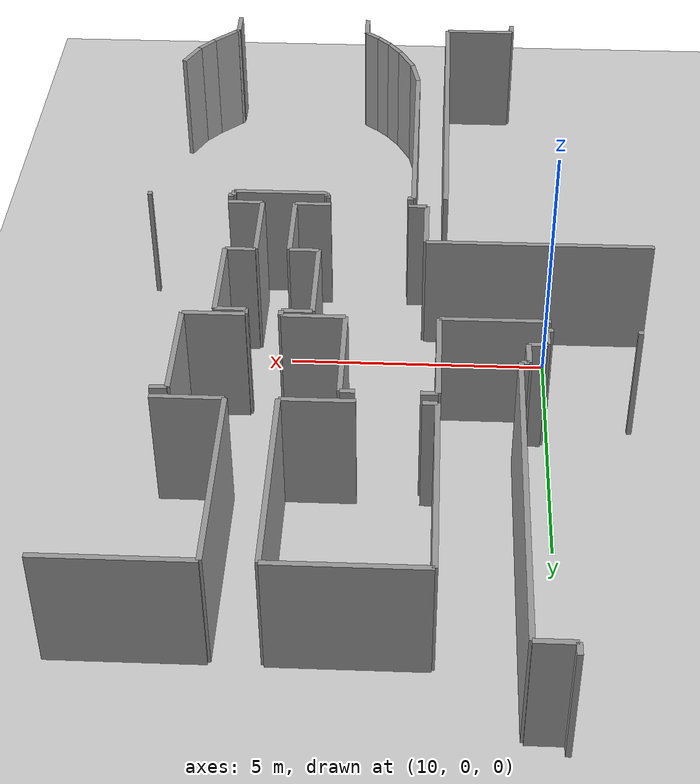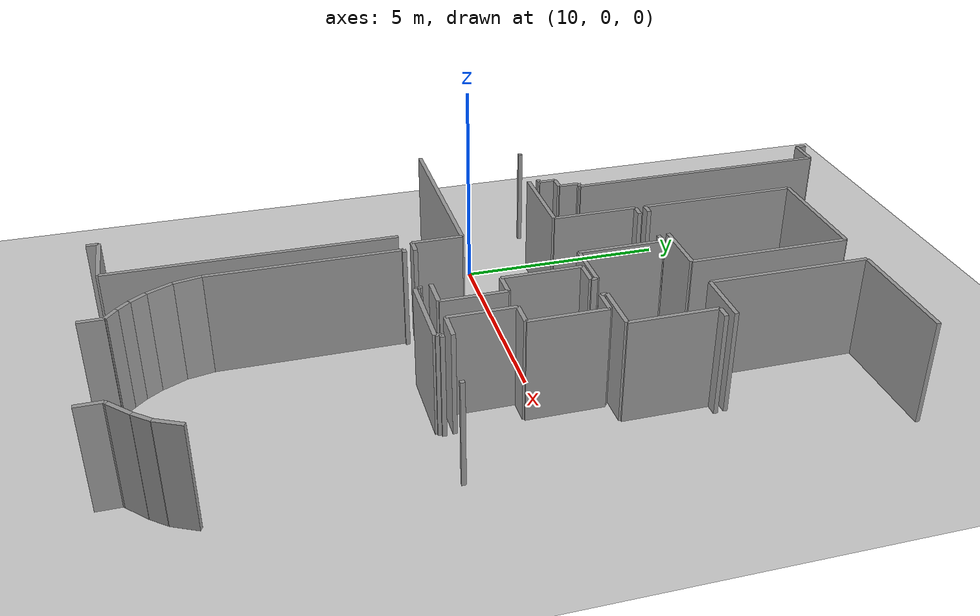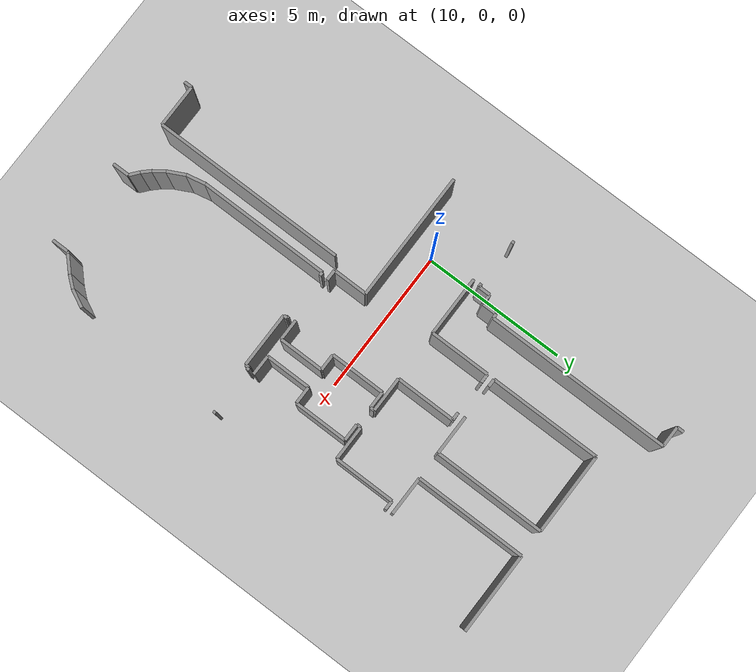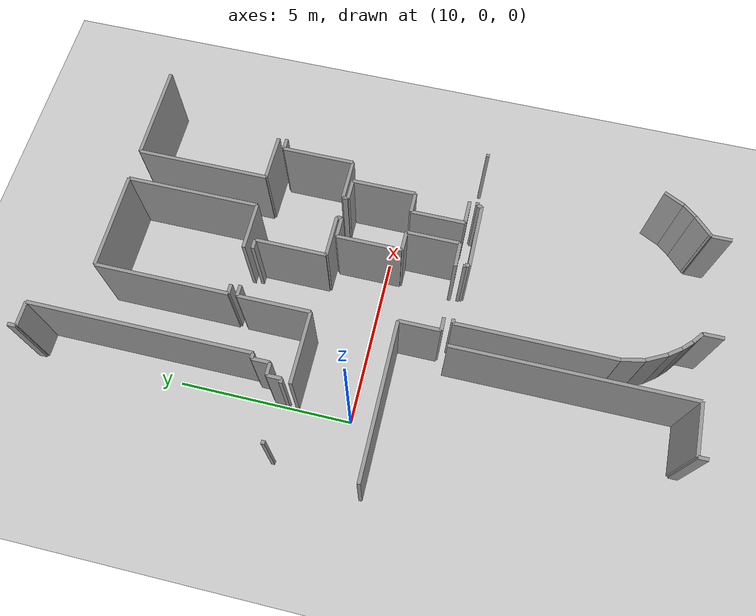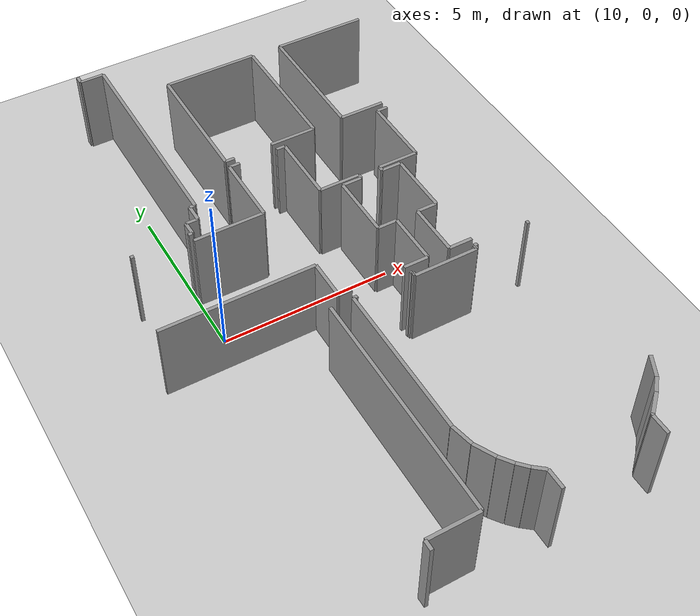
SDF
<sdf version="1.6">
 <world name="default">
  <model name="ground_plane">
   <static>1</static>
   <link name="link">
    <collision name="collision">
     <geometry><plane><normal>0 0 1</normal><size>100 100</size></plane></geometry>
     <surface><friction><ode><mu>100</mu><mu2>50</mu2></ode></friction></surface>
    </collision>
    <visual name="visual">
     <cast_shadows>0</cast_shadows>
     <geometry><plane><normal>0 0 1</normal><size>100 100</size></plane></geometry>
     <material>
      <script><uri>file://media/materials/scripts/gazebo.material</uri><name>Gazebo/Grey</name></script>
     </material>
    </visual>
   </link>
  </model>
  <model name="0510034841_A-40">
   <static>1</static>
   <link name="Wall_162">
    <collision name="Wall_162_Collision">
     <geometry><box><size>0.242586574591 0.1 2.5</size></box></geometry>
     <pose>0.121293287296 0 1.25 0 0 0</pose>
    </collision>
    <visual name="Wall_162_Visual">
     <pose>0.121293287296 0 1.25 0 0 0</pose>
     <geometry><box><size>0.242586574591 0.1 2.5</size></box></geometry>
     <material>
      <script><uri>file://media/materials/scripts/gazebo.material</uri><name>Gazebo/Grey</name></script>
      <ambient>1 1 1 1</ambient>
     </material>
    </visual>
    <pose>43.7260079212 -0.00609322636336 0 0 0 -1.57079632679</pose>
   </link>
   <link name="Wall_163">
    <collision name="Wall_163_Collision">
     <geometry><box><size>0.706687315934 0.1 2.5</size></box></geometry>
     <pose>0.353343657967 0 1.25 0 0 0</pose>
    </collision>
    <visual name="Wall_163_Visual">
     <pose>0.353343657967 0 1.25 0 0 0</pose>
     <geometry><box><size>0.706687315934 0.1 2.5</size></box></geometry>
     <material>
      <script><uri>file://media/materials/scripts/gazebo.material</uri><name>Gazebo/Grey</name></script>
      <ambient>1 1 1 1</ambient>
     </material>
    </visual>
    <pose>43.7260079212 -0.248679800955 0 0 0 0.0</pose>
   </link>
   <link name="Wall_164">
    <collision name="Wall_164_Collision">
     <geometry><box><size>6.36323245659 0.1 2.5</size></box></geometry>
     <pose>3.18161622829 0 1.25 0 0 0</pose>
    </collision>
    <visual name="Wall_164_Visual">
     <pose>3.18161622829 0 1.25 0 0 0</pose>
     <geometry><box><size>6.36323245659 0.1 2.5</size></box></geometry>
     <material>
      <script><uri>file://media/materials/scripts/gazebo.material</uri><name>Gazebo/Grey</name></script>
      <ambient>1 1 1 1</ambient>
     </material>
    </visual>
    <pose>44.4326952371 -0.248679800955 0 0 0 -1.57079632679</pose>
   </link>
   <link name="Wall_165">
    <collision name="Wall_165_Collision">
     <geometry><box><size>0.151695948004 0.1 2.5</size></box></geometry>
     <pose>0.0758479740022 0 1.25 0 0 0</pose>
    </collision>
    <visual name="Wall_165_Visual">
     <pose>0.0758479740022 0 1.25 0 0 0</pose>
     <geometry><box><size>0.151695948004 0.1 2.5</size></box></geometry>
     <material>
      <script><uri>file://media/materials/scripts/gazebo.material</uri><name>Gazebo/Grey</name></script>
      <ambient>1 1 1 1</ambient>
     </material>
    </visual>
    <pose>44.4326952371 -6.61191225754 0 0 0 3.14159265359</pose>
   </link>
   <link name="Wall_166">
    <collision name="Wall_166_Collision">
     <geometry><box><size>0.507514979181 0.1 2.5</size></box></geometry>
     <pose>0.253757489591 0 1.25 0 0 0</pose>
    </collision>
    <visual name="Wall_166_Visual">
     <pose>0.253757489591 0 1.25 0 0 0</pose>
     <geometry><box><size>0.507514979181 0.1 2.5</size></box></geometry>
     <material>
      <script><uri>file://media/materials/scripts/gazebo.material</uri><name>Gazebo/Grey</name></script>
      <ambient>1 1 1 1</ambient>
     </material>
    </visual>
    <pose>44.2809992891 -6.61191225754 0 0 0 -1.57079632679</pose>
   </link>
   <link name="Wall_167">
    <collision name="Wall_167_Collision">
     <geometry><box><size>0.347313902711 0.1 2.5</size></box></geometry>
     <pose>0.173656951356 0 1.25 0 0 0</pose>
    </collision>
    <visual name="Wall_167_Visual">
     <pose>0.173656951356 0 1.25 0 0 0</pose>
     <geometry><box><size>0.347313902711 0.1 2.5</size></box></geometry>
     <material>
      <script><uri>file://media/materials/scripts/gazebo.material</uri><name>Gazebo/Grey</name></script>
      <ambient>1 1 1 1</ambient>
     </material>
    </visual>
    <pose>44.2809992891 -7.11942723672 0 0 0 3.14159265359</pose>
   </link>
   <link name="Wall_168">
    <collision name="Wall_168_Collision">
     <geometry><box><size>0.405707322027 0.1 2.5</size></box></geometry>
     <pose>0.202853661014 0 1.25 0 0 0</pose>
    </collision>
    <visual name="Wall_168_Visual">
     <pose>0.202853661014 0 1.25 0 0 0</pose>
     <geometry><box><size>0.405707322027 0.1 2.5</size></box></geometry>
     <material>
      <script><uri>file://media/materials/scripts/gazebo.material</uri><name>Gazebo/Grey</name></script>
      <ambient>1 1 1 1</ambient>
     </material>
    </visual>
    <pose>43.9336853864 -7.11942723672 0 0 0 -1.57079632679</pose>
   </link>
   <link name="Wall_169">
    <collision name="Wall_169_Collision">
     <geometry><box><size>0.120975931756 0.1 2.5</size></box></geometry>
     <pose>0.0604879658779 0 1.25 0 0 0</pose>
    </collision>
    <visual name="Wall_169_Visual">
     <pose>0.0604879658779 0 1.25 0 0 0</pose>
     <geometry><box><size>0.120975931756 0.1 2.5</size></box></geometry>
     <material>
      <script><uri>file://media/materials/scripts/gazebo.material</uri><name>Gazebo/Grey</name></script>
      <ambient>1 1 1 1</ambient>
     </material>
    </visual>
    <pose>43.9336853864 -7.52513455875 0 0 0 3.14159265359</pose>
   </link>
   <link name="Wall_170">
    <collision name="Wall_170_Collision">
     <geometry><box><size>0.0982532751092 0.1 2.5</size></box></geometry>
     <pose>0.0491266375546 0 1.25 0 0 0</pose>
    </collision>
    <visual name="Wall_170_Visual">
     <pose>0.0491266375546 0 1.25 0 0 0</pose>
     <geometry><box><size>0.0982532751092 0.1 2.5</size></box></geometry>
     <material>
      <script><uri>file://media/materials/scripts/gazebo.material</uri><name>Gazebo/Grey</name></script>
      <ambient>1 1 1 1</ambient>
     </material>
    </visual>
    <pose>42.2708693003 -7.52513455875 0 0 0 3.14159265359</pose>
   </link>
   <link name="Wall_189">
    <collision name="Wall_189_Collision">
     <geometry><box><size>6.67055956129 0.1 2.5</size></box></geometry>
     <pose>3.33527978064 0 1.25 0 0 0</pose>
    </collision>
    <visual name="Wall_189_Visual">
     <pose>3.33527978064 0 1.25 0 0 0</pose>
     <geometry><box><size>6.67055956129 0.1 2.5</size></box></geometry>
     <material>
      <script><uri>file://media/materials/scripts/gazebo.material</uri><name>Gazebo/Grey</name></script>
      <ambient>1 1 1 1</ambient>
     </material>
    </visual>
    <pose>45.8093835686 -11.5443789987 0 0 0 -1.57079632679</pose>
   </link>
   <link name="Wall_190">
    <collision name="Wall_190_Collision">
     <geometry><box><size>1.46478622931 0.1 2.5</size></box></geometry>
     <pose>0.732393114654 0 1.25 0 0 0</pose>
    </collision>
    <visual name="Wall_190_Visual">
     <pose>0.732393114654 0 1.25 0 0 0</pose>
     <geometry><box><size>1.46478622931 0.1 2.5</size></box></geometry>
     <material>
      <script><uri>file://media/materials/scripts/gazebo.material</uri><name>Gazebo/Grey</name></script>
      <ambient>1 1 1 1</ambient>
     </material>
    </visual>
    <pose>45.8093835686 -18.21493856 0 0 0 3.14159265359</pose>
   </link>
   <link name="Wall_191">
    <collision name="Wall_191_Collision">
     <geometry><box><size>0.27825733726 0.1 2.5</size></box></geometry>
     <pose>0.13912866863 0 1.25 0 0 0</pose>
    </collision>
    <visual name="Wall_191_Visual">
     <pose>0.13912866863 0 1.25 0 0 0</pose>
     <geometry><box><size>0.27825733726 0.1 2.5</size></box></geometry>
     <material>
      <script><uri>file://media/materials/scripts/gazebo.material</uri><name>Gazebo/Grey</name></script>
      <ambient>1 1 1 1</ambient>
     </material>
    </visual>
    <pose>44.3445973393 -18.21493856 0 0 0 -1.57079632679</pose>
   </link>
   <link name="Wall_194">
    <collision name="Wall_194_Collision">
     <geometry><box><size>2.78054229715 0.1 2.5</size></box></geometry>
     <pose>1.39027114857 0 1.25 0 0 0</pose>
    </collision>
    <visual name="Wall_194_Visual">
     <pose>1.39027114857 0 1.25 0 0 0</pose>
     <geometry><box><size>2.78054229715 0.1 2.5</size></box></geometry>
     <material>
      <script><uri>file://media/materials/scripts/gazebo.material</uri><name>Gazebo/Grey</name></script>
      <ambient>1 1 1 1</ambient>
     </material>
    </visual>
    <pose>45.906621306 -1.64720219356 0 0 0 0.0</pose>
   </link>
   <link name="Wall_195">
    <collision name="Wall_195_Collision">
     <geometry><box><size>3.82451508074 0.1 2.5</size></box></geometry>
     <pose>1.91225754037 0 1.25 0 0 0</pose>
    </collision>
    <visual name="Wall_195_Visual">
     <pose>1.91225754037 0 1.25 0 0 0</pose>
     <geometry><box><size>3.82451508074 0.1 2.5</size></box></geometry>
     <material>
      <script><uri>file://media/materials/scripts/gazebo.material</uri><name>Gazebo/Grey</name></script>
      <ambient>1 1 1 1</ambient>
     </material>
    </visual>
    <pose>48.6871636031 -1.64720219356 0 0 0 -1.57079632679</pose>
   </link>
   <link name="Wall_196">
    <collision name="Wall_196_Collision">
     <geometry><box><size>1.35688534579 0.1 2.5</size></box></geometry>
     <pose>0.678442672895 0 1.25 0 0 0</pose>
    </collision>
    <visual name="Wall_196_Visual">
     <pose>0.678442672895 0 1.25 0 0 0</pose>
     <geometry><box><size>1.35688534579 0.1 2.5</size></box></geometry>
     <material>
      <script><uri>file://media/materials/scripts/gazebo.material</uri><name>Gazebo/Grey</name></script>
      <ambient>1 1 1 1</ambient>
     </material>
    </visual>
    <pose>48.6871636031 -5.4717172743 0 0 0 3.14159265359</pose>
   </link>
   <link name="Wall_197">
    <collision name="Wall_197_Collision">
     <geometry><box><size>0.273052706408 0.1 2.5</size></box></geometry>
     <pose>0.136526353204 0 1.25 0 0 0</pose>
    </collision>
    <visual name="Wall_197_Visual">
     <pose>0.136526353204 0 1.25 0 0 0</pose>
     <geometry><box><size>0.273052706408 0.1 2.5</size></box></geometry>
     <material>
      <script><uri>file://media/materials/scripts/gazebo.material</uri><name>Gazebo/Grey</name></script>
      <ambient>1 1 1 1</ambient>
     </material>
    </visual>
    <pose>46.1796740124 -5.4717172743 0 0 0 3.14159265359</pose>
   </link>
   <link name="Wall_198">
    <collision name="Wall_198_Collision">
     <geometry><box><size>3.82451508074 0.1 2.5</size></box></geometry>
     <pose>1.91225754037 0 1.25 0 0 0</pose>
    </collision>
    <visual name="Wall_198_Visual">
     <pose>1.91225754037 0 1.25 0 0 0</pose>
     <geometry><box><size>3.82451508074 0.1 2.5</size></box></geometry>
     <material>
      <script><uri>file://media/materials/scripts/gazebo.material</uri><name>Gazebo/Grey</name></script>
      <ambient>1 1 1 1</ambient>
     </material>
    </visual>
    <pose>45.906621306 -5.4717172743 0 0 0 1.57079632679</pose>
   </link>
   <link name="Wall_200">
    <collision name="Wall_200_Collision">
     <geometry><box><size>2.05252868894 0.1 2.5</size></box></geometry>
     <pose>1.02626434447 0 1.25 0 0 0</pose>
    </collision>
    <visual name="Wall_200_Visual">
     <pose>1.02626434447 0 1.25 0 0 0</pose>
     <geometry><box><size>2.05252868894 0.1 2.5</size></box></geometry>
     <material>
      <script><uri>file://media/materials/scripts/gazebo.material</uri><name>Gazebo/Grey</name></script>
      <ambient>1 1 1 1</ambient>
     </material>
    </visual>
    <pose>43.8479993907 -7.78206560374 0 0 0 0.0</pose>
   </link>
   <link name="Wall_201">
    <collision name="Wall_201_Collision">
     <geometry><box><size>2.05798720422 0.1 2.5</size></box></geometry>
     <pose>1.02899360211 0 1.25 0 0 0</pose>
    </collision>
    <visual name="Wall_201_Visual">
     <pose>1.02899360211 0 1.25 0 0 0</pose>
     <geometry><box><size>2.05798720422 0.1 2.5</size></box></geometry>
     <material>
      <script><uri>file://media/materials/scripts/gazebo.material</uri><name>Gazebo/Grey</name></script>
      <ambient>1 1 1 1</ambient>
     </material>
    </visual>
    <pose>45.9005280796 -7.78206560374 0 0 0 1.57079632679</pose>
   </link>
   <link name="Wall_202">
    <collision name="Wall_202_Collision">
     <geometry><box><size>0.312912562202 0.1 2.5</size></box></geometry>
     <pose>0.156456281101 0 1.25 0 0 0</pose>
    </collision>
    <visual name="Wall_202_Visual">
     <pose>0.156456281101 0 1.25 0 0 0</pose>
     <geometry><box><size>0.312912562202 0.1 2.5</size></box></geometry>
     <material>
      <script><uri>file://media/materials/scripts/gazebo.material</uri><name>Gazebo/Grey</name></script>
      <ambient>1 1 1 1</ambient>
     </material>
    </visual>
    <pose>45.9005280796 -5.72407839951 0 0 0 0.0</pose>
   </link>
   <link name="Wall_203">
    <collision name="Wall_203_Collision">
     <geometry><box><size>0.268990555499 0.1 2.5</size></box></geometry>
     <pose>0.13449527775 0 1.25 0 0 0</pose>
    </collision>
    <visual name="Wall_203_Visual">
     <pose>0.13449527775 0 1.25 0 0 0</pose>
     <geometry><box><size>0.268990555499 0.1 2.5</size></box></geometry>
     <material>
      <script><uri>file://media/materials/scripts/gazebo.material</uri><name>Gazebo/Grey</name></script>
      <ambient>1 1 1 1</ambient>
     </material>
    </visual>
    <pose>47.3603635625 -5.72407839951 0 0 0 0.0</pose>
   </link>
   <link name="Wall_204">
    <collision name="Wall_204_Collision">
     <geometry><box><size>2.03894587184 0.1 2.5</size></box></geometry>
     <pose>1.01947293592 0 1.25 0 0 0</pose>
    </collision>
    <visual name="Wall_204_Visual">
     <pose>1.01947293592 0 1.25 0 0 0</pose>
     <geometry><box><size>2.03894587184 0.1 2.5</size></box></geometry>
     <material>
      <script><uri>file://media/materials/scripts/gazebo.material</uri><name>Gazebo/Grey</name></script>
      <ambient>1 1 1 1</ambient>
     </material>
    </visual>
    <pose>47.629354118 -5.72407839951 0 0 0 -1.57079632679</pose>
   </link>
   <link name="Wall_205">
    <collision name="Wall_205_Collision">
     <geometry><box><size>1.20036559358 0.1 2.5</size></box></geometry>
     <pose>0.600182796791 0 1.25 0 0 0</pose>
    </collision>
    <visual name="Wall_205_Visual">
     <pose>0.600182796791 0 1.25 0 0 0</pose>
     <geometry><box><size>1.20036559358 0.1 2.5</size></box></geometry>
     <material>
      <script><uri>file://media/materials/scripts/gazebo.material</uri><name>Gazebo/Grey</name></script>
      <ambient>1 1 1 1</ambient>
     </material>
    </visual>
    <pose>47.629354118 -7.76302427135 0 0 0 0.0</pose>
   </link>
   <link name="Wall_206">
    <collision name="Wall_206_Collision">
     <geometry><box><size>0.138367015335 0.1 2.5</size></box></geometry>
     <pose>0.0691835076673 0 1.25 0 0 0</pose>
    </collision>
    <visual name="Wall_206_Visual">
     <pose>0.0691835076673 0 1.25 0 0 0</pose>
     <geometry><box><size>0.138367015335 0.1 2.5</size></box></geometry>
     <material>
      <script><uri>file://media/materials/scripts/gazebo.material</uri><name>Gazebo/Grey</name></script>
      <ambient>1 1 1 1</ambient>
     </material>
    </visual>
    <pose>48.8297197116 -7.76302427135 0 0 0 -1.57079632679</pose>
   </link>
   <link name="Wall_207">
    <collision name="Wall_207_Collision">
     <geometry><box><size>0.577333197928 0.1 2.5</size></box></geometry>
     <pose>0.288666598964 0 1.25 0 0 0</pose>
    </collision>
    <visual name="Wall_207_Visual">
     <pose>0.288666598964 0 1.25 0 0 0</pose>
     <geometry><box><size>0.577333197928 0.1 2.5</size></box></geometry>
     <material>
      <script><uri>file://media/materials/scripts/gazebo.material</uri><name>Gazebo/Grey</name></script>
      <ambient>1 1 1 1</ambient>
     </material>
    </visual>
    <pose>48.8297197116 -7.90139128669 0 0 0 3.14159265359</pose>
   </link>
   <link name="Wall_208">
    <collision name="Wall_208_Collision">
     <geometry><box><size>1.86528892048 0.1 2.5</size></box></geometry>
     <pose>0.932644460242 0 1.25 0 0 0</pose>
    </collision>
    <visual name="Wall_208_Visual">
     <pose>0.932644460242 0 1.25 0 0 0</pose>
     <geometry><box><size>1.86528892048 0.1 2.5</size></box></geometry>
     <material>
      <script><uri>file://media/materials/scripts/gazebo.material</uri><name>Gazebo/Grey</name></script>
      <ambient>1 1 1 1</ambient>
     </material>
    </visual>
    <pose>48.2523865137 -7.90139128669 0 0 0 -1.57079632679</pose>
   </link>
   <link name="Wall_209">
    <collision name="Wall_209_Collision">
     <geometry><box><size>0.571747740429 0.1 2.5</size></box></geometry>
     <pose>0.285873870214 0 1.25 0 0 0</pose>
    </collision>
    <visual name="Wall_209_Visual">
     <pose>0.285873870214 0 1.25 0 0 0</pose>
     <geometry><box><size>0.571747740429 0.1 2.5</size></box></geometry>
     <material>
      <script><uri>file://media/materials/scripts/gazebo.material</uri><name>Gazebo/Grey</name></script>
      <ambient>1 1 1 1</ambient>
     </material>
    </visual>
    <pose>48.2523865137 -9.76668020717 0 0 0 0.0</pose>
   </link>
   <link name="Wall_210">
    <collision name="Wall_210_Collision">
     <geometry><box><size>1.52863816391 0.1 2.5</size></box></geometry>
     <pose>0.764319081954 0 1.25 0 0 0</pose>
    </collision>
    <visual name="Wall_210_Visual">
     <pose>0.764319081954 0 1.25 0 0 0</pose>
     <geometry><box><size>1.52863816391 0.1 2.5</size></box></geometry>
     <material>
      <script><uri>file://media/materials/scripts/gazebo.material</uri><name>Gazebo/Grey</name></script>
      <ambient>1 1 1 1</ambient>
     </material>
    </visual>
    <pose>48.8241342541 -9.76668020717 0 0 0 -1.57079632679</pose>
   </link>
   <link name="Wall_211">
    <collision name="Wall_211_Collision">
     <geometry><box><size>0.716842693206 0.1 2.5</size></box></geometry>
     <pose>0.358421346603 0 1.25 0 0 0</pose>
    </collision>
    <visual name="Wall_211_Visual">
     <pose>0.358421346603 0 1.25 0 0 0</pose>
     <geometry><box><size>0.716842693206 0.1 2.5</size></box></geometry>
     <material>
      <script><uri>file://media/materials/scripts/gazebo.material</uri><name>Gazebo/Grey</name></script>
      <ambient>1 1 1 1</ambient>
     </material>
    </visual>
    <pose>48.8241342541 -11.2953183711 0 0 0 3.14159265359</pose>
   </link>
   <link name="Wall_212">
    <collision name="Wall_212_Collision">
     <geometry><box><size>0.367751599472 0.1 2.5</size></box></geometry>
     <pose>0.183875799736 0 1.25 0 0 0</pose>
    </collision>
    <visual name="Wall_212_Visual">
     <pose>0.183875799736 0 1.25 0 0 0</pose>
     <geometry><box><size>0.367751599472 0.1 2.5</size></box></geometry>
     <material>
      <script><uri>file://media/materials/scripts/gazebo.material</uri><name>Gazebo/Grey</name></script>
      <ambient>1 1 1 1</ambient>
     </material>
    </visual>
    <pose>46.5530110694 -11.2953183711 0 0 0 3.14159265359</pose>
   </link>
   <link name="Wall_213">
    <collision name="Wall_213_Collision">
     <geometry><box><size>1.17954707017 0.1 2.5</size></box></geometry>
     <pose>0.589773535087 0 1.25 0 0 0</pose>
    </collision>
    <visual name="Wall_213_Visual">
     <pose>0.589773535087 0 1.25 0 0 0</pose>
     <geometry><box><size>1.17954707017 0.1 2.5</size></box></geometry>
     <material>
      <script><uri>file://media/materials/scripts/gazebo.material</uri><name>Gazebo/Grey</name></script>
      <ambient>1 1 1 1</ambient>
     </material>
    </visual>
    <pose>46.1852594699 -11.2953183711 0 0 0 1.57079632679</pose>
   </link>
   <link name="Wall_214">
    <collision name="Wall_214_Collision">
     <geometry><box><size>4.42812531736 0.1 2.5</size></box></geometry>
     <pose>2.21406265868 0 1.25 0 0 0</pose>
    </collision>
    <visual name="Wall_214_Visual">
     <pose>2.21406265868 0 1.25 0 0 0</pose>
     <geometry><box><size>4.42812531736 0.1 2.5</size></box></geometry>
     <material>
      <script><uri>file://media/materials/scripts/gazebo.material</uri><name>Gazebo/Grey</name></script>
      <ambient>1 1 1 1</ambient>
     </material>
    </visual>
    <pose>46.1852594699 -10.1157713009 0 0 0 3.14159265359</pose>
   </link>
   <link name="Wall_220">
    <collision name="Wall_220_Collision">
     <geometry><box><size>0.374834591644 0.1 2.5</size></box></geometry>
     <pose>0.187417295822 0 1.25 0 0 0</pose>
    </collision>
    <visual name="Wall_220_Visual">
     <pose>0.187417295822 0 1.25 0 0 0</pose>
     <geometry><box><size>0.374834591644 0.1 2.5</size></box></geometry>
     <material>
      <script><uri>file://media/materials/scripts/gazebo.material</uri><name>Gazebo/Grey</name></script>
      <ambient>1 1 1 1</ambient>
     </material>
    </visual>
    <pose>47.6701025693 -18.0673047629 0 0 0 2.46320228556</pose>
   </link>
   <link name="Wall_221">
    <collision name="Wall_221_Collision">
     <geometry><box><size>0.358049065556 0.1 2.5</size></box></geometry>
     <pose>0.179024532778 0 1.25 0 0 0</pose>
    </collision>
    <visual name="Wall_221_Visual">
     <pose>0.179024532778 0 1.25 0 0 0</pose>
     <geometry><box><size>0.358049065556 0.1 2.5</size></box></geometry>
     <material>
      <script><uri>file://media/materials/scripts/gazebo.material</uri><name>Gazebo/Grey</name></script>
      <ambient>1 1 1 1</ambient>
     </material>
    </visual>
    <pose>47.3782624149 -17.8320808368 0 0 0 2.33513441475</pose>
   </link>
   <link name="Wall_222">
    <collision name="Wall_222_Collision">
     <geometry><box><size>0.429524533756 0.1 2.5</size></box></geometry>
     <pose>0.214762266878 0 1.25 0 0 0</pose>
    </collision>
    <visual name="Wall_222_Visual">
     <pose>0.214762266878 0 1.25 0 0 0</pose>
     <geometry><box><size>0.429524533756 0.1 2.5</size></box></geometry>
     <material>
      <script><uri>file://media/materials/scripts/gazebo.material</uri><name>Gazebo/Grey</name></script>
      <ambient>1 1 1 1</ambient>
     </material>
    </visual>
    <pose>47.1304712095 -17.5736264852 0 0 0 2.20283018392</pose>
   </link>
   <link name="Wall_223">
    <collision name="Wall_223_Collision">
     <geometry><box><size>0.632097913555 0.1 2.5</size></box></geometry>
     <pose>0.316048956777 0 1.25 0 0 0</pose>
    </collision>
    <visual name="Wall_223_Visual">
     <pose>0.316048956777 0 1.25 0 0 0</pose>
     <geometry><box><size>0.632097913555 0.1 2.5</size></box></geometry>
     <material>
      <script><uri>file://media/materials/scripts/gazebo.material</uri><name>Gazebo/Grey</name></script>
      <ambient>1 1 1 1</ambient>
     </material>
    </visual>
    <pose>46.8767137199 -17.2270742358 0 0 0 2.04189844115</pose>
   </link>
   <link name="Wall_224">
    <collision name="Wall_224_Collision">
     <geometry><box><size>0.647406707426 0.1 2.5</size></box></geometry>
     <pose>0.323703353713 0 1.25 0 0 0</pose>
    </collision>
    <visual name="Wall_224_Visual">
     <pose>0.323703353713 0 1.25 0 0 0</pose>
     <geometry><box><size>0.647406707426 0.1 2.5</size></box></geometry>
     <material>
      <script><uri>file://media/materials/scripts/gazebo.material</uri><name>Gazebo/Grey</name></script>
      <ambient>1 1 1 1</ambient>
     </material>
    </visual>
    <pose>46.589824312 -16.6638316238 0 0 0 1.78076669586</pose>
   </link>
   <link name="Wall_225">
    <collision name="Wall_225_Collision">
     <geometry><box><size>4.47852137707 0.1 2.5</size></box></geometry>
     <pose>2.23926068853 0 1.25 0 0 0</pose>
    </collision>
    <visual name="Wall_225_Visual">
     <pose>2.23926068853 0 1.25 0 0 0</pose>
     <geometry><box><size>4.47852137707 0.1 2.5</size></box></geometry>
     <material>
      <script><uri>file://media/materials/scripts/gazebo.material</uri><name>Gazebo/Grey</name></script>
      <ambient>1 1 1 1</ambient>
     </material>
    </visual>
    <pose>46.4548847365 -16.0306438509 0 0 0 1.57079632679</pose>
   </link>
   <link name="Wall_226">
    <collision name="Wall_226_Collision">
     <geometry><box><size>0.122372296131 0.1 2.5</size></box></geometry>
     <pose>0.0611861480654 0 1.25 0 0 0</pose>
    </collision>
    <visual name="Wall_226_Visual">
     <pose>0.0611861480654 0 1.25 0 0 0</pose>
     <geometry><box><size>0.122372296131 0.1 2.5</size></box></geometry>
     <material>
      <script><uri>file://media/materials/scripts/gazebo.material</uri><name>Gazebo/Grey</name></script>
      <ambient>1 1 1 1</ambient>
     </material>
    </visual>
    <pose>46.4548847365 -11.5521224738 0 0 0 0.0</pose>
   </link>
   <link name="Wall_227">
    <collision name="Wall_227_Collision">
     <geometry><box><size>0.0721031786331 0.1 2.5</size></box></geometry>
     <pose>0.0360515893165 0 1.25 0 0 0</pose>
    </collision>
    <visual name="Wall_227_Visual">
     <pose>0.0360515893165 0 1.25 0 0 0</pose>
     <geometry><box><size>0.0721031786331 0.1 2.5</size></box></geometry>
     <material>
      <script><uri>file://media/materials/scripts/gazebo.material</uri><name>Gazebo/Grey</name></script>
      <ambient>1 1 1 1</ambient>
     </material>
    </visual>
    <pose>48.1345841373 -11.5521224738 0 0 0 0.0</pose>
   </link>
   <link name="Wall_228">
    <collision name="Wall_228_Collision">
     <geometry><box><size>0.120341220676 0.1 2.5</size></box></geometry>
     <pose>0.0601706103382 0 1.25 0 0 0</pose>
    </collision>
    <visual name="Wall_228_Visual">
     <pose>0.0601706103382 0 1.25 0 0 0</pose>
     <geometry><box><size>0.120341220676 0.1 2.5</size></box></geometry>
     <material>
      <script><uri>file://media/materials/scripts/gazebo.material</uri><name>Gazebo/Grey</name></script>
      <ambient>1 1 1 1</ambient>
     </material>
    </visual>
    <pose>48.2066873159 -11.5521224738 0 0 0 -1.57079632679</pose>
   </link>
   <link name="Wall_229">
    <collision name="Wall_229_Collision">
     <geometry><box><size>1.87874479537 0.1 2.5</size></box></geometry>
     <pose>0.939372397685 0 1.25 0 0 0</pose>
    </collision>
    <visual name="Wall_229_Visual">
     <pose>0.939372397685 0 1.25 0 0 0</pose>
     <geometry><box><size>1.87874479537 0.1 2.5</size></box></geometry>
     <material>
      <script><uri>file://media/materials/scripts/gazebo.material</uri><name>Gazebo/Grey</name></script>
      <ambient>1 1 1 1</ambient>
     </material>
    </visual>
    <pose>48.2066873159 -11.6724636945 0 0 0 0.0</pose>
   </link>
   <link name="Wall_230">
    <collision name="Wall_230_Collision">
     <geometry><box><size>0.134304864426 0.1 2.5</size></box></geometry>
     <pose>0.0671524322129 0 1.25 0 0 0</pose>
    </collision>
    <visual name="Wall_230_Visual">
     <pose>0.0671524322129 0 1.25 0 0 0</pose>
     <geometry><box><size>0.134304864426 0.1 2.5</size></box></geometry>
     <material>
      <script><uri>file://media/materials/scripts/gazebo.material</uri><name>Gazebo/Grey</name></script>
      <ambient>1 1 1 1</ambient>
     </material>
    </visual>
    <pose>50.0854321113 -11.6724636945 0 0 0 1.57079632679</pose>
   </link>
   <link name="Wall_231">
    <collision name="Wall_231_Collision">
     <geometry><box><size>0.106377576927 0.1 2.5</size></box></geometry>
     <pose>0.0531887884635 0 1.25 0 0 0</pose>
    </collision>
    <visual name="Wall_231_Visual">
     <pose>0.0531887884635 0 1.25 0 0 0</pose>
     <geometry><box><size>0.106377576927 0.1 2.5</size></box></geometry>
     <material>
      <script><uri>file://media/materials/scripts/gazebo.material</uri><name>Gazebo/Grey</name></script>
      <ambient>1 1 1 1</ambient>
     </material>
    </visual>
    <pose>50.0854321113 -11.5381588301 0 0 0 0.0</pose>
   </link>
   <link name="Wall_232">
    <collision name="Wall_232_Collision">
     <geometry><box><size>0.0865745912461 0.1 2.5</size></box></geometry>
     <pose>0.043287295623 0 1.25 0 0 0</pose>
    </collision>
    <visual name="Wall_232_Visual">
     <pose>0.043287295623 0 1.25 0 0 0</pose>
     <geometry><box><size>0.0865745912461 0.1 2.5</size></box></geometry>
     <material>
      <script><uri>file://media/materials/scripts/gazebo.material</uri><name>Gazebo/Grey</name></script>
      <ambient>1 1 1 1</ambient>
     </material>
    </visual>
    <pose>51.7391083579 -11.5381588301 0 0 0 0.0</pose>
   </link>
   <link name="Wall_235">
    <collision name="Wall_235_Collision">
     <geometry><box><size>0.638098001094 0.1 2.5</size></box></geometry>
     <pose>0.319049000547 0 1.25 0 0 0</pose>
    </collision>
    <visual name="Wall_235_Visual">
     <pose>0.319049000547 0 1.25 0 0 0</pose>
     <geometry><box><size>0.638098001094 0.1 2.5</size></box></geometry>
     <material>
      <script><uri>file://media/materials/scripts/gazebo.material</uri><name>Gazebo/Grey</name></script>
      <ambient>1 1 1 1</ambient>
     </material>
    </visual>
    <pose>51.7233675231 -16.6618005484 0 0 0 -2.0344439358</pose>
   </link>
   <link name="Wall_236">
    <collision name="Wall_236_Collision">
     <geometry><box><size>0.459521090399 0.1 2.5</size></box></geometry>
     <pose>0.2297605452 0 1.25 0 0 0</pose>
    </collision>
    <visual name="Wall_236_Visual">
     <pose>0.2297605452 0 1.25 0 0 0</pose>
     <geometry><box><size>0.459521090399 0.1 2.5</size></box></geometry>
     <material>
      <script><uri>file://media/materials/scripts/gazebo.material</uri><name>Gazebo/Grey</name></script>
      <ambient>1 1 1 1</ambient>
     </material>
    </visual>
    <pose>51.4380014218 -17.2325327511 0 0 0 -2.27151217752</pose>
   </link>
   <link name="Wall_237">
    <collision name="Wall_237_Collision">
     <geometry><box><size>0.636689627173 0.1 2.5</size></box></geometry>
     <pose>0.318344813586 0 1.25 0 0 0</pose>
    </collision>
    <visual name="Wall_237_Visual">
     <pose>0.318344813586 0 1.25 0 0 0</pose>
     <geometry><box><size>0.636689627173 0.1 2.5</size></box></geometry>
     <material>
      <script><uri>file://media/materials/scripts/gazebo.material</uri><name>Gazebo/Grey</name></script>
      <ambient>1 1 1 1</ambient>
     </material>
    </visual>
    <pose>51.1417182898 -17.5837818625 0 0 0 -2.38058677449</pose>
   </link>
   <link name="Wall_238">
    <collision name="Wall_238_Collision">
     <geometry><box><size>0.0672363679896 0.1 2.5</size></box></geometry>
     <pose>0.0336181839948 0 1.25 0 0 0</pose>
    </collision>
    <visual name="Wall_238_Visual">
     <pose>0.0336181839948 0 1.25 0 0 0</pose>
     <geometry><box><size>0.0672363679896 0.1 2.5</size></box></geometry>
     <material>
      <script><uri>file://media/materials/scripts/gazebo.material</uri><name>Gazebo/Grey</name></script>
      <ambient>1 1 1 1</ambient>
     </material>
    </visual>
    <pose>50.6806641617 -18.0228749873 0 0 0 -2.34417904709</pose>
   </link>
   <link name="Wall_239">
    <collision name="Wall_239_Collision">
     <geometry><box><size>0.566670051792 0.1 2.5</size></box></geometry>
     <pose>0.283335025896 0 1.25 0 0 0</pose>
    </collision>
    <visual name="Wall_239_Visual">
     <pose>0.283335025896 0 1.25 0 0 0</pose>
     <geometry><box><size>0.566670051792 0.1 2.5</size></box></geometry>
     <material>
      <script><uri>file://media/materials/scripts/gazebo.material</uri><name>Gazebo/Grey</name></script>
      <ambient>1 1 1 1</ambient>
     </material>
    </visual>
    <pose>50.6336955418 -18.0709860871 0 0 0 -1.57079632679</pose>
   </link>
   <link name="Wall_240">
    <collision name="Wall_240_Collision">
     <geometry><box><size>0.570360205151 0.1 2.5</size></box></geometry>
     <pose>0.285180102576 0 1.25 0 0 0</pose>
    </collision>
    <visual name="Wall_240_Visual">
     <pose>0.285180102576 0 1.25 0 0 0</pose>
     <geometry><box><size>0.570360205151 0.1 2.5</size></box></geometry>
     <material>
      <script><uri>file://media/materials/scripts/gazebo.material</uri><name>Gazebo/Grey</name></script>
      <ambient>1 1 1 1</ambient>
     </material>
    </visual>
    <pose>47.6732761247 -18.6376561389 0 0 0 1.57636048037</pose>
   </link>
   <link name="Wall_241">
    <collision name="Wall_241_Collision">
     <geometry><box><size>1.54907586067 0.1 2.5</size></box></geometry>
     <pose>0.774537930334 0 1.25 0 0 0</pose>
    </collision>
    <visual name="Wall_241_Visual">
     <pose>0.774537930334 0 1.25 0 0 0</pose>
     <geometry><box><size>1.54907586067 0.1 2.5</size></box></geometry>
     <material>
      <script><uri>file://media/materials/scripts/gazebo.material</uri><name>Gazebo/Grey</name></script>
      <ambient>1 1 1 1</ambient>
     </material>
    </visual>
    <pose>49.4797907992 -11.3021732507 0 0 0 1.57079632679</pose>
   </link>
   <link name="Wall_242">
    <collision name="Wall_242_Collision">
     <geometry><box><size>0.590789072814 0.1 2.5</size></box></geometry>
     <pose>0.295394536407 0 1.25 0 0 0</pose>
    </collision>
    <visual name="Wall_242_Visual">
     <pose>0.295394536407 0 1.25 0 0 0</pose>
     <geometry><box><size>0.590789072814 0.1 2.5</size></box></geometry>
     <material>
      <script><uri>file://media/materials/scripts/gazebo.material</uri><name>Gazebo/Grey</name></script>
      <ambient>1 1 1 1</ambient>
     </material>
    </visual>
    <pose>49.4797907992 -9.75309739007 0 0 0 0.0</pose>
   </link>
   <link name="Wall_243">
    <collision name="Wall_243_Collision">
     <geometry><box><size>1.83304559764 0.1 2.5</size></box></geometry>
     <pose>0.916522798822 0 1.25 0 0 0</pose>
    </collision>
    <visual name="Wall_243_Visual">
     <pose>0.916522798822 0 1.25 0 0 0</pose>
     <geometry><box><size>1.83304559764 0.1 2.5</size></box></geometry>
     <material>
      <script><uri>file://media/materials/scripts/gazebo.material</uri><name>Gazebo/Grey</name></script>
      <ambient>1 1 1 1</ambient>
     </material>
    </visual>
    <pose>50.070579872 -9.75309739007 0 0 0 1.57079632679</pose>
   </link>
   <link name="Wall_244">
    <collision name="Wall_244_Collision">
     <geometry><box><size>0.582410886564 0.1 2.5</size></box></geometry>
     <pose>0.291205443282 0 1.25 0 0 0</pose>
    </collision>
    <visual name="Wall_244_Visual">
     <pose>0.291205443282 0 1.25 0 0 0</pose>
     <geometry><box><size>0.582410886564 0.1 2.5</size></box></geometry>
     <material>
      <script><uri>file://media/materials/scripts/gazebo.material</uri><name>Gazebo/Grey</name></script>
      <ambient>1 1 1 1</ambient>
     </material>
    </visual>
    <pose>50.070579872 -7.92005179242 0 0 0 3.14159265359</pose>
   </link>
   <link name="Wall_245">
    <collision name="Wall_245_Collision">
     <geometry><box><size>0.145221894993 0.1 2.5</size></box></geometry>
     <pose>0.0726109474967 0 1.25 0 0 0</pose>
    </collision>
    <visual name="Wall_245_Visual">
     <pose>0.0726109474967 0 1.25 0 0 0</pose>
     <geometry><box><size>0.145221894993 0.1 2.5</size></box></geometry>
     <material>
      <script><uri>file://media/materials/scripts/gazebo.material</uri><name>Gazebo/Grey</name></script>
      <ambient>1 1 1 1</ambient>
     </material>
    </visual>
    <pose>49.4881689855 -7.92005179242 0 0 0 1.57079632679</pose>
   </link>
   <link name="Wall_246">
    <collision name="Wall_246_Collision">
     <geometry><box><size>1.17434243932 0.1 2.5</size></box></geometry>
     <pose>0.587171219661 0 1.25 0 0 0</pose>
    </collision>
    <visual name="Wall_246_Visual">
     <pose>0.587171219661 0 1.25 0 0 0</pose>
     <geometry><box><size>1.17434243932 0.1 2.5</size></box></geometry>
     <material>
      <script><uri>file://media/materials/scripts/gazebo.material</uri><name>Gazebo/Grey</name></script>
      <ambient>1 1 1 1</ambient>
     </material>
    </visual>
    <pose>49.4881689855 -7.77482989743 0 0 0 0.0</pose>
   </link>
   <link name="Wall_247">
    <collision name="Wall_247_Collision">
     <geometry><box><size>2.07004671474 0.1 2.5</size></box></geometry>
     <pose>1.03502335737 0 1.25 0 0 0</pose>
    </collision>
    <visual name="Wall_247_Visual">
     <pose>1.03502335737 0 1.25 0 0 0</pose>
     <geometry><box><size>2.07004671474 0.1 2.5</size></box></geometry>
     <material>
      <script><uri>file://media/materials/scripts/gazebo.material</uri><name>Gazebo/Grey</name></script>
      <ambient>1 1 1 1</ambient>
     </material>
    </visual>
    <pose>50.6625114248 -7.77482989743 0 0 0 1.57079632679</pose>
   </link>
   <link name="Wall_248">
    <collision name="Wall_248_Collision">
     <geometry><box><size>0.318751904133 0.1 2.5</size></box></geometry>
     <pose>0.159375952067 0 1.25 0 0 0</pose>
    </collision>
    <visual name="Wall_248_Visual">
     <pose>0.159375952067 0 1.25 0 0 0</pose>
     <geometry><box><size>0.318751904133 0.1 2.5</size></box></geometry>
     <material>
      <script><uri>file://media/materials/scripts/gazebo.material</uri><name>Gazebo/Grey</name></script>
      <ambient>1 1 1 1</ambient>
     </material>
    </visual>
    <pose>50.6625114248 -5.7047831827 0 0 0 0.0</pose>
   </link>
   <link name="Wall_261">
    <collision name="Wall_261_Collision">
     <geometry><box><size>0.689706264674 0.1 2.5</size></box></geometry>
     <pose>0.344853132337 0 1.25 0 0 0</pose>
    </collision>
    <visual name="Wall_261_Visual">
     <pose>0.344853132337 0 1.25 0 0 0</pose>
     <geometry><box><size>0.689706264674 0.1 2.5</size></box></geometry>
     <material>
      <script><uri>file://media/materials/scripts/gazebo.material</uri><name>Gazebo/Grey</name></script>
      <ambient>1 1 1 1</ambient>
     </material>
    </visual>
    <pose>50.1694678582 -11.3085203615 0 0 0 3.1323898948</pose>
   </link>
   <link name="Wall_262">
    <collision name="Wall_262_Collision">
     <geometry><box><size>3.79988829085 0.1 2.5</size></box></geometry>
     <pose>1.89994414543 0 1.25 0 0 0</pose>
    </collision>
    <visual name="Wall_262_Visual">
     <pose>1.89994414543 0 1.25 0 0 0</pose>
     <geometry><box><size>3.79988829085 0.1 2.5</size></box></geometry>
     <material>
      <script><uri>file://media/materials/scripts/gazebo.material</uri><name>Gazebo/Grey</name></script>
      <ambient>1 1 1 1</ambient>
     </material>
    </visual>
    <pose>49.6218391388 -5.45648420839 0 0 0 1.57079632679</pose>
   </link>
   <link name="Wall_263">
    <collision name="Wall_263_Collision">
     <geometry><box><size>2.78282725703 0.1 2.5</size></box></geometry>
     <pose>1.39141362852 0 1.25 0 0 0</pose>
    </collision>
    <visual name="Wall_263_Visual">
     <pose>1.39141362852 0 1.25 0 0 0</pose>
     <geometry><box><size>2.78282725703 0.1 2.5</size></box></geometry>
     <material>
      <script><uri>file://media/materials/scripts/gazebo.material</uri><name>Gazebo/Grey</name></script>
      <ambient>1 1 1 1</ambient>
     </material>
    </visual>
    <pose>49.6218391388 -1.65659591754 0 0 0 0.0</pose>
   </link>
   <link name="Wall_266">
    <collision name="Wall_266_Collision">
     <geometry><box><size>1.33138826691 0.1 2.5</size></box></geometry>
     <pose>0.665694133457 0 1.25 0 0 0</pose>
    </collision>
    <visual name="Wall_266_Visual">
     <pose>0.665694133457 0 1.25 0 0 0</pose>
     <geometry><box><size>1.33138826691 0.1 2.5</size></box></geometry>
     <material>
      <script><uri>file://media/materials/scripts/gazebo.material</uri><name>Gazebo/Grey</name></script>
      <ambient>1 1 1 1</ambient>
     </material>
    </visual>
    <pose>50.9532090992 -5.46346603026 0 0 0 3.13634861318</pose>
   </link>
   <pose>-33.8 9.33765613893 0 0 0 0</pose>
  </model>
 </world>
</sdf>
